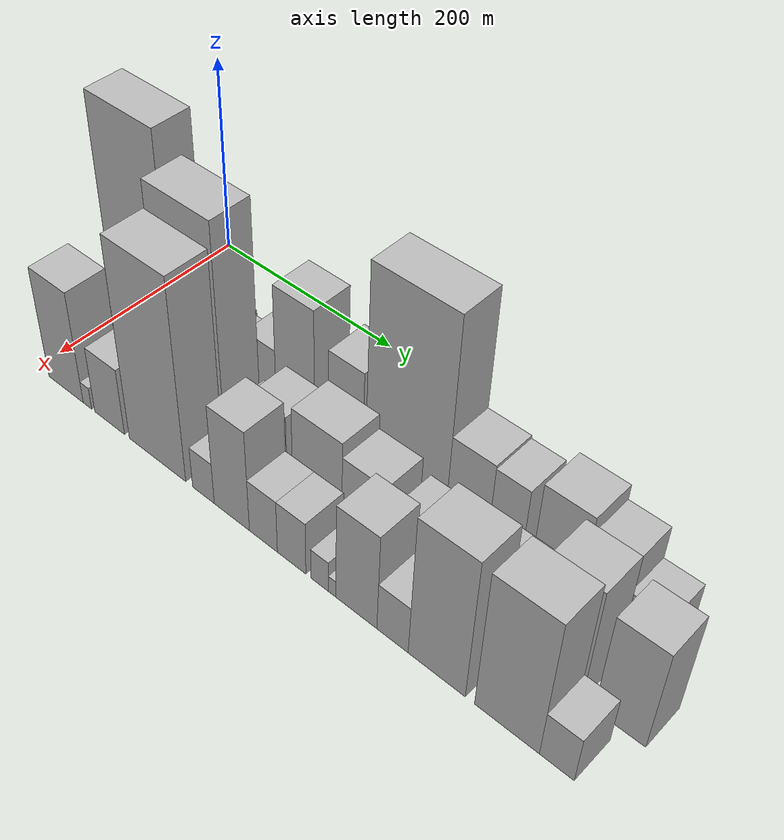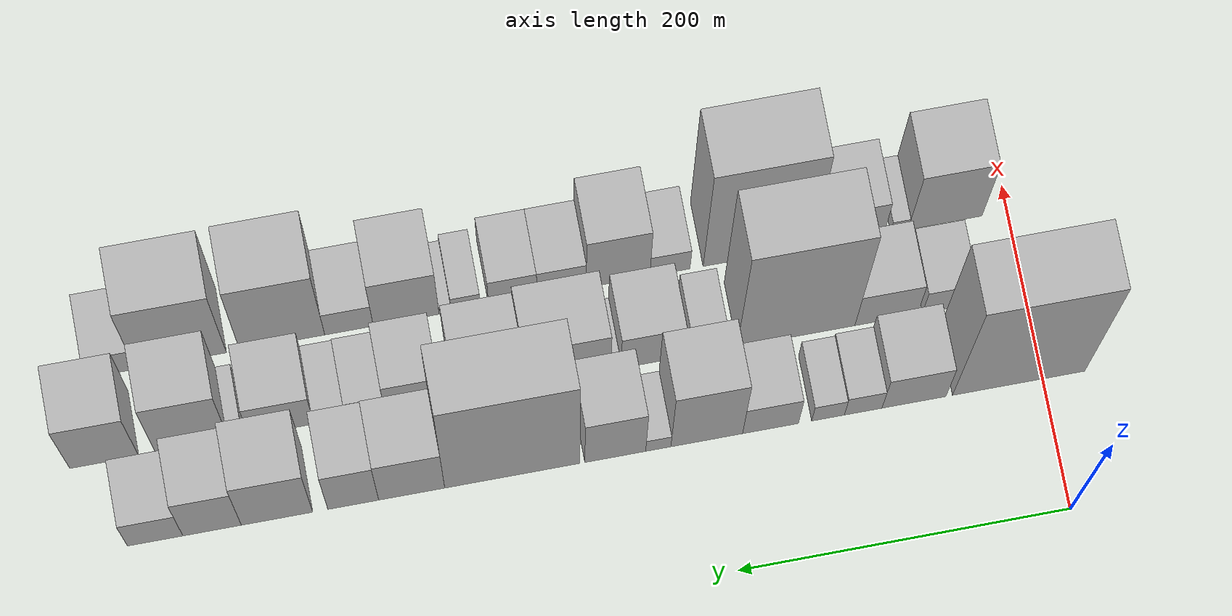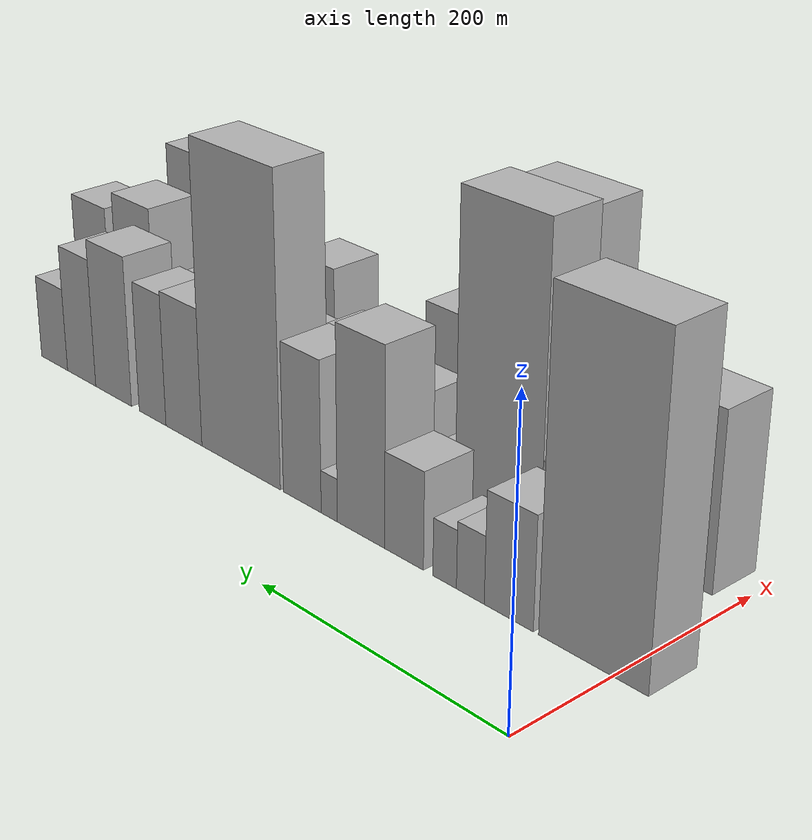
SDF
<sdf version="1.6">
 <world name="default">
  <model name="building_15">
   <static>1</static>
   <pose>100.0000 14.8957 0 0.000000 0.000000 0.000000</pose>
   <link name="link">
    <pose>0 0 108.00 0 0 0</pose>
    <collision name="collision"><geometry><box><size>40.0000 80.1104 216.0000</size></box></geometry></collision>
    <visual name="visual">
     <cast_shadows>0</cast_shadows>
     <geometry><box><size>40.0000 80.1104 216.0000</size></box></geometry>
     <material>
      <script>
       <uri>model://HANNAS_wall/materials/scripts</uri>
       <uri>model://HANNAS_wall/materials/textures</uri>
       <name>vrc/HANNAS_wall</name>
      </script>
     </material>
    </visual>
   </link>
  </model>
  <model name="building_16">
   <static>1</static>
   <pose>100.0000 78.2823 0 0.000000 0.000000 0.000000</pose>
   <link name="link">
    <pose>0 0 37.50 0 0 0</pose>
    <collision name="collision"><geometry><box><size>40.0000 38.6628 75.0000</size></box></geometry></collision>
    <visual name="visual">
     <cast_shadows>0</cast_shadows>
     <geometry><box><size>40.0000 38.6628 75.0000</size></box></geometry>
     <material>
      <script>
       <uri>model://HANNAS_wall/materials/scripts</uri>
       <uri>model://HANNAS_wall/materials/textures</uri>
       <name>vrc/HANNAS_wall</name>
      </script>
     </material>
    </visual>
   </link>
  </model>
  <model name="building_17">
   <static>1</static>
   <pose>100.0000 108.9480 0 0.000000 0.000000 0.000000</pose>
   <link name="link">
    <pose>0 0 22.50 0 0 0</pose>
    <collision name="collision"><geometry><box><size>40.0000 22.6685 45.0000</size></box></geometry></collision>
    <visual name="visual">
     <cast_shadows>0</cast_shadows>
     <geometry><box><size>40.0000 22.6685 45.0000</size></box></geometry>
     <material>
      <script>
       <uri>model://HANNAS_wall/materials/scripts</uri>
       <uri>model://HANNAS_wall/materials/textures</uri>
       <name>vrc/HANNAS_wall</name>
      </script>
     </material>
    </visual>
   </link>
  </model>
  <model name="building_18">
   <static>1</static>
   <pose>100.0000 130.1563 0 0.000000 0.000000 0.000000</pose>
   <link name="link">
    <pose>0 0 19.50 0 0 0</pose>
    <collision name="collision"><geometry><box><size>40.0000 19.7481 39.0000</size></box></geometry></collision>
    <visual name="visual">
     <cast_shadows>0</cast_shadows>
     <geometry><box><size>40.0000 19.7481 39.0000</size></box></geometry>
     <material>
      <script>
       <uri>model://HANNAS_wall/materials/scripts</uri>
       <uri>model://HANNAS_wall/materials/textures</uri>
       <name>vrc/HANNAS_wall</name>
      </script>
     </material>
    </visual>
   </link>
  </model>
  <model name="building_19">
   <static>1</static>
   <pose>100.0000 164.8471 0 0.000000 0.000000 0.000000</pose>
   <link name="link">
    <pose>0 0 33.00 0 0 0</pose>
    <collision name="collision"><geometry><box><size>40.0000 33.6333 66.0000</size></box></geometry></collision>
    <visual name="visual">
     <cast_shadows>0</cast_shadows>
     <geometry><box><size>40.0000 33.6333 66.0000</size></box></geometry>
     <material>
      <script>
       <uri>model://HANNAS_wall/materials/scripts</uri>
       <uri>model://HANNAS_wall/materials/textures</uri>
       <name>vrc/HANNAS_wall</name>
      </script>
     </material>
    </visual>
   </link>
  </model>
  <model name="building_20">
   <static>1</static>
   <pose>100.0000 203.2782 0 0.000000 0.000000 0.000000</pose>
   <link name="link">
    <pose>0 0 67.50 0 0 0</pose>
    <collision name="collision"><geometry><box><size>40.0000 43.2290 135.0000</size></box></geometry></collision>
    <visual name="visual">
     <cast_shadows>0</cast_shadows>
     <geometry><box><size>40.0000 43.2290 135.0000</size></box></geometry>
     <material>
      <script>
       <uri>model://HANNAS_wall/materials/scripts</uri>
       <uri>model://HANNAS_wall/materials/textures</uri>
       <name>vrc/HANNAS_wall</name>
      </script>
     </material>
    </visual>
   </link>
  </model>
  <model name="building_21">
   <static>1</static>
   <pose>100.0000 232.4542 0 0.000000 0.000000 0.000000</pose>
   <link name="link">
    <pose>0 0 15.00 0 0 0</pose>
    <collision name="collision"><geometry><box><size>40.0000 15.1230 30.0000</size></box></geometry></collision>
    <visual name="visual">
     <cast_shadows>0</cast_shadows>
     <geometry><box><size>40.0000 15.1230 30.0000</size></box></geometry>
     <material>
      <script>
       <uri>model://HANNAS_wall/materials/scripts</uri>
       <uri>model://HANNAS_wall/materials/textures</uri>
       <name>vrc/HANNAS_wall</name>
      </script>
     </material>
    </visual>
   </link>
  </model>
  <model name="building_22">
   <static>1</static>
   <pose>100.0000 258.2992 0 0.000000 0.000000 0.000000</pose>
   <link name="link">
    <pose>0 0 52.50 0 0 0</pose>
    <collision name="collision"><geometry><box><size>40.0000 36.5669 105.0000</size></box></geometry></collision>
    <visual name="visual">
     <cast_shadows>0</cast_shadows>
     <geometry><box><size>40.0000 36.5669 105.0000</size></box></geometry>
     <material>
      <script>
       <uri>model://HANNAS_wall/materials/scripts</uri>
       <uri>model://HANNAS_wall/materials/textures</uri>
       <name>vrc/HANNAS_wall</name>
      </script>
     </material>
    </visual>
   </link>
  </model>
  <model name="building_23">
   <static>1</static>
   <pose>100.0000 320.1064 0 0.000000 0.000000 0.000000</pose>
   <link name="link">
    <pose>0 0 108.00 0 0 0</pose>
    <collision name="collision"><geometry><box><size>40.0000 81.0476 216.0000</size></box></geometry></collision>
    <visual name="visual">
     <cast_shadows>0</cast_shadows>
     <geometry><box><size>40.0000 81.0476 216.0000</size></box></geometry>
     <material>
      <script>
       <uri>model://HANNAS_wall/materials/scripts</uri>
       <uri>model://HANNAS_wall/materials/textures</uri>
       <name>vrc/HANNAS_wall</name>
      </script>
     </material>
    </visual>
   </link>
  </model>
  <model name="building_24">
   <static>1</static>
   <pose>100.0000 380.3925 0 0.000000 0.000000 0.000000</pose>
   <link name="link">
    <pose>0 0 49.50 0 0 0</pose>
    <collision name="collision"><geometry><box><size>40.0000 39.5247 99.0000</size></box></geometry></collision>
    <visual name="visual">
     <cast_shadows>0</cast_shadows>
     <geometry><box><size>40.0000 39.5247 99.0000</size></box></geometry>
     <material>
      <script>
       <uri>model://HANNAS_wall/materials/scripts</uri>
       <uri>model://HANNAS_wall/materials/textures</uri>
       <name>vrc/HANNAS_wall</name>
      </script>
     </material>
    </visual>
   </link>
  </model>
  <model name="building_25">
   <static>1</static>
   <pose>100.0000 415.3816 0 0.000000 0.000000 0.000000</pose>
   <link name="link">
    <pose>0 0 48.00 0 0 0</pose>
    <collision name="collision"><geometry><box><size>40.0000 30.4535 96.0000</size></box></geometry></collision>
    <visual name="visual">
     <cast_shadows>0</cast_shadows>
     <geometry><box><size>40.0000 30.4535 96.0000</size></box></geometry>
     <material>
      <script>
       <uri>model://HANNAS_wall/materials/scripts</uri>
       <uri>model://HANNAS_wall/materials/textures</uri>
       <name>vrc/HANNAS_wall</name>
      </script>
     </material>
    </visual>
   </link>
  </model>
  <model name="building_26">
   <static>1</static>
   <pose>100.0000 460.9299 0 0.000000 0.000000 0.000000</pose>
   <link name="link">
    <pose>0 0 55.50 0 0 0</pose>
    <collision name="collision"><geometry><box><size>40.0000 42.6431 111.0000</size></box></geometry></collision>
    <visual name="visual">
     <cast_shadows>0</cast_shadows>
     <geometry><box><size>40.0000 42.6431 111.0000</size></box></geometry>
     <material>
      <script>
       <uri>model://HANNAS_wall/materials/scripts</uri>
       <uri>model://HANNAS_wall/materials/textures</uri>
       <name>vrc/HANNAS_wall</name>
      </script>
     </material>
    </visual>
   </link>
  </model>
  <model name="building_27">
   <static>1</static>
   <pose>100.0000 499.7047 0 0.000000 0.000000 0.000000</pose>
   <link name="link">
    <pose>0 0 48.00 0 0 0</pose>
    <collision name="collision"><geometry><box><size>40.0000 34.9063 96.0000</size></box></geometry></collision>
    <visual name="visual">
     <cast_shadows>0</cast_shadows>
     <geometry><box><size>40.0000 34.9063 96.0000</size></box></geometry>
     <material>
      <script>
       <uri>model://HANNAS_wall/materials/scripts</uri>
       <uri>model://HANNAS_wall/materials/textures</uri>
       <name>vrc/HANNAS_wall</name>
      </script>
     </material>
    </visual>
   </link>
  </model>
  <model name="building_28">
   <static>1</static>
   <pose>100.0000 533.6708 0 0.000000 0.000000 0.000000</pose>
   <link name="link">
    <pose>0 0 31.50 0 0 0</pose>
    <collision name="collision"><geometry><box><size>40.0000 33.0259 63.0000</size></box></geometry></collision>
    <visual name="visual">
     <cast_shadows>0</cast_shadows>
     <geometry><box><size>40.0000 33.0259 63.0000</size></box></geometry>
     <material>
      <script>
       <uri>model://HANNAS_wall/materials/scripts</uri>
       <uri>model://HANNAS_wall/materials/textures</uri>
       <name>vrc/HANNAS_wall</name>
      </script>
     </material>
    </visual>
   </link>
  </model>
  <model name="building_41">
   <static>1</static>
   <pose>152.0000 47.9209 0 0.000000 0.000000 0.000000</pose>
   <link name="link">
    <pose>0 0 25.50 0 0 0</pose>
    <collision name="collision"><geometry><box><size>40.0000 29.5241 51.0000</size></box></geometry></collision>
    <visual name="visual">
     <cast_shadows>0</cast_shadows>
     <geometry><box><size>40.0000 29.5241 51.0000</size></box></geometry>
     <material>
      <script>
       <uri>model://HANNAS_wall/materials/scripts</uri>
       <uri>model://HANNAS_wall/materials/textures</uri>
       <name>vrc/HANNAS_wall</name>
      </script>
     </material>
    </visual>
   </link>
  </model>
  <model name="building_42">
   <static>1</static>
   <pose>152.0000 84.6121 0 0.000000 0.000000 0.000000</pose>
   <link name="link">
    <pose>0 0 36.00 0 0 0</pose>
    <collision name="collision"><geometry><box><size>40.0000 37.8582 72.0000</size></box></geometry></collision>
    <visual name="visual">
     <cast_shadows>0</cast_shadows>
     <geometry><box><size>40.0000 37.8582 72.0000</size></box></geometry>
     <material>
      <script>
       <uri>model://HANNAS_wall/materials/scripts</uri>
       <uri>model://HANNAS_wall/materials/textures</uri>
       <name>vrc/HANNAS_wall</name>
      </script>
     </material>
    </visual>
   </link>
  </model>
  <model name="building_43">
   <static>1</static>
   <pose>152.0000 139.2581 0 0.000000 0.000000 0.000000</pose>
   <link name="link">
    <pose>0 0 111.00 0 0 0</pose>
    <collision name="collision"><geometry><box><size>40.0000 71.4339 222.0000</size></box></geometry></collision>
    <visual name="visual">
     <cast_shadows>0</cast_shadows>
     <geometry><box><size>40.0000 71.4339 222.0000</size></box></geometry>
     <material>
      <script>
       <uri>model://HANNAS_wall/materials/scripts</uri>
       <uri>model://HANNAS_wall/materials/textures</uri>
       <name>vrc/HANNAS_wall</name>
      </script>
     </material>
    </visual>
   </link>
  </model>
  <model name="building_44">
   <static>1</static>
   <pose>152.0000 191.8766 0 0.000000 0.000000 0.000000</pose>
   <link name="link">
    <pose>0 0 21.00 0 0 0</pose>
    <collision name="collision"><geometry><box><size>40.0000 21.8030 42.0000</size></box></geometry></collision>
    <visual name="visual">
     <cast_shadows>0</cast_shadows>
     <geometry><box><size>40.0000 21.8030 42.0000</size></box></geometry>
     <material>
      <script>
       <uri>model://HANNAS_wall/materials/scripts</uri>
       <uri>model://HANNAS_wall/materials/textures</uri>
       <name>vrc/HANNAS_wall</name>
      </script>
     </material>
    </visual>
   </link>
  </model>
  <model name="building_45">
   <static>1</static>
   <pose>152.0000 225.9655 0 0.000000 0.000000 0.000000</pose>
   <link name="link">
    <pose>0 0 37.50 0 0 0</pose>
    <collision name="collision"><geometry><box><size>40.0000 38.3748 75.0000</size></box></geometry></collision>
    <visual name="visual">
     <cast_shadows>0</cast_shadows>
     <geometry><box><size>40.0000 38.3748 75.0000</size></box></geometry>
     <material>
      <script>
       <uri>model://HANNAS_wall/materials/scripts</uri>
       <uri>model://HANNAS_wall/materials/textures</uri>
       <name>vrc/HANNAS_wall</name>
      </script>
     </material>
    </visual>
   </link>
  </model>
  <model name="building_46">
   <static>1</static>
   <pose>152.0000 248.2238 0 0.000000 0.000000 0.000000</pose>
   <link name="link">
    <pose>0 0 7.50 0 0 0</pose>
    <collision name="collision"><geometry><box><size>40.0000 6.1420 15.0000</size></box></geometry></collision>
    <visual name="visual">
     <cast_shadows>0</cast_shadows>
     <geometry><box><size>40.0000 6.1420 15.0000</size></box></geometry>
     <material>
      <script>
       <uri>model://HANNAS_wall/materials/scripts</uri>
       <uri>model://HANNAS_wall/materials/textures</uri>
       <name>vrc/HANNAS_wall</name>
      </script>
     </material>
    </visual>
   </link>
  </model>
  <model name="building_47">
   <static>1</static>
   <pose>152.0000 277.0766 0 0.000000 0.000000 0.000000</pose>
   <link name="link">
    <pose>0 0 45.00 0 0 0</pose>
    <collision name="collision"><geometry><box><size>40.0000 51.5635 90.0000</size></box></geometry></collision>
    <visual name="visual">
     <cast_shadows>0</cast_shadows>
     <geometry><box><size>40.0000 51.5635 90.0000</size></box></geometry>
     <material>
      <script>
       <uri>model://HANNAS_wall/materials/scripts</uri>
       <uri>model://HANNAS_wall/materials/textures</uri>
       <name>vrc/HANNAS_wall</name>
      </script>
     </material>
    </visual>
   </link>
  </model>
  <model name="building_48">
   <static>1</static>
   <pose>152.0000 324.0281 0 0.000000 0.000000 0.000000</pose>
   <link name="link">
    <pose>0 0 37.50 0 0 0</pose>
    <collision name="collision"><geometry><box><size>40.0000 42.3395 75.0000</size></box></geometry></collision>
    <visual name="visual">
     <cast_shadows>0</cast_shadows>
     <geometry><box><size>40.0000 42.3395 75.0000</size></box></geometry>
     <material>
      <script>
       <uri>model://HANNAS_wall/materials/scripts</uri>
       <uri>model://HANNAS_wall/materials/textures</uri>
       <name>vrc/HANNAS_wall</name>
      </script>
     </material>
    </visual>
   </link>
  </model>
  <model name="building_49">
   <static>1</static>
   <pose>152.0000 370.3041 0 0.000000 0.000000 0.000000</pose>
   <link name="link">
    <pose>0 0 31.50 0 0 0</pose>
    <collision name="collision"><geometry><box><size>40.0000 34.2124 63.0000</size></box></geometry></collision>
    <visual name="visual">
     <cast_shadows>0</cast_shadows>
     <geometry><box><size>40.0000 34.2124 63.0000</size></box></geometry>
     <material>
      <script>
       <uri>model://HANNAS_wall/materials/scripts</uri>
       <uri>model://HANNAS_wall/materials/textures</uri>
       <name>vrc/HANNAS_wall</name>
      </script>
     </material>
    </visual>
   </link>
  </model>
  <model name="building_50">
   <static>1</static>
   <pose>152.0000 399.0556 0 0.000000 0.000000 0.000000</pose>
   <link name="link">
    <pose>0 0 19.50 0 0 0</pose>
    <collision name="collision"><geometry><box><size>40.0000 23.2908 39.0000</size></box></geometry></collision>
    <visual name="visual">
     <cast_shadows>0</cast_shadows>
     <geometry><box><size>40.0000 23.2908 39.0000</size></box></geometry>
     <material>
      <script>
       <uri>model://HANNAS_wall/materials/scripts</uri>
       <uri>model://HANNAS_wall/materials/textures</uri>
       <name>vrc/HANNAS_wall</name>
      </script>
     </material>
    </visual>
   </link>
  </model>
  <model name="building_51">
   <static>1</static>
   <pose>152.0000 420.2294 0 0.000000 0.000000 0.000000</pose>
   <link name="link">
    <pose>0 0 18.00 0 0 0</pose>
    <collision name="collision"><geometry><box><size>40.0000 19.0568 36.0000</size></box></geometry></collision>
    <visual name="visual">
     <cast_shadows>0</cast_shadows>
     <geometry><box><size>40.0000 19.0568 36.0000</size></box></geometry>
     <material>
      <script>
       <uri>model://HANNAS_wall/materials/scripts</uri>
       <uri>model://HANNAS_wall/materials/textures</uri>
       <name>vrc/HANNAS_wall</name>
      </script>
     </material>
    </visual>
   </link>
  </model>
  <model name="building_52">
   <static>1</static>
   <pose>152.0000 449.4010 0 0.000000 0.000000 0.000000</pose>
   <link name="link">
    <pose>0 0 36.00 0 0 0</pose>
    <collision name="collision"><geometry><box><size>40.0000 39.2864 72.0000</size></box></geometry></collision>
    <visual name="visual">
     <cast_shadows>0</cast_shadows>
     <geometry><box><size>40.0000 39.2864 72.0000</size></box></geometry>
     <material>
      <script>
       <uri>model://HANNAS_wall/materials/scripts</uri>
       <uri>model://HANNAS_wall/materials/textures</uri>
       <name>vrc/HANNAS_wall</name>
      </script>
     </material>
    </visual>
   </link>
  </model>
  <model name="building_53">
   <static>1</static>
   <pose>152.0000 476.5127 0 0.000000 0.000000 0.000000</pose>
   <link name="link">
    <pose>0 0 10.50 0 0 0</pose>
    <collision name="collision"><geometry><box><size>40.0000 8.9369 21.0000</size></box></geometry></collision>
    <visual name="visual">
     <cast_shadows>0</cast_shadows>
     <geometry><box><size>40.0000 8.9369 21.0000</size></box></geometry>
     <material>
      <script>
       <uri>model://HANNAS_wall/materials/scripts</uri>
       <uri>model://HANNAS_wall/materials/textures</uri>
       <name>vrc/HANNAS_wall</name>
      </script>
     </material>
    </visual>
   </link>
  </model>
  <model name="building_54">
   <static>1</static>
   <pose>152.0000 502.9391 0 0.000000 0.000000 0.000000</pose>
   <link name="link">
    <pose>0 0 60.00 0 0 0</pose>
    <collision name="collision"><geometry><box><size>40.0000 43.9160 120.0000</size></box></geometry></collision>
    <visual name="visual">
     <cast_shadows>0</cast_shadows>
     <geometry><box><size>40.0000 43.9160 120.0000</size></box></geometry>
     <material>
      <script>
       <uri>model://HANNAS_wall/materials/scripts</uri>
       <uri>model://HANNAS_wall/materials/textures</uri>
       <name>vrc/HANNAS_wall</name>
      </script>
     </material>
    </visual>
   </link>
  </model>
  <model name="building_55">
   <static>1</static>
   <pose>152.0000 555.5497 0 0.000000 0.000000 0.000000</pose>
   <link name="link">
    <pose>0 0 52.50 0 0 0</pose>
    <collision name="collision"><geometry><box><size>40.0000 41.3052 105.0000</size></box></geometry></collision>
    <visual name="visual">
     <cast_shadows>0</cast_shadows>
     <geometry><box><size>40.0000 41.3052 105.0000</size></box></geometry>
     <material>
      <script>
       <uri>model://HANNAS_wall/materials/scripts</uri>
       <uri>model://HANNAS_wall/materials/textures</uri>
       <name>vrc/HANNAS_wall</name>
      </script>
     </material>
    </visual>
   </link>
  </model>
  <model name="building_73">
   <static>1</static>
   <pose>204.0000 38.1514 0 0.000000 0.000000 0.000000</pose>
   <link name="link">
    <pose>0 0 60.00 0 0 0</pose>
    <collision name="collision"><geometry><box><size>40.0000 45.0077 120.0000</size></box></geometry></collision>
    <visual name="visual">
     <cast_shadows>0</cast_shadows>
     <geometry><box><size>40.0000 45.0077 120.0000</size></box></geometry>
     <material>
      <script>
       <uri>model://HANNAS_wall/materials/scripts</uri>
       <uri>model://HANNAS_wall/materials/textures</uri>
       <name>vrc/HANNAS_wall</name>
      </script>
     </material>
    </visual>
   </link>
  </model>
  <model name="building_74">
   <static>1</static>
   <pose>204.0000 66.0488 0 0.000000 0.000000 0.000000</pose>
   <link name="link">
    <pose>0 0 12.00 0 0 0</pose>
    <collision name="collision"><geometry><box><size>40.0000 10.7871 24.0000</size></box></geometry></collision>
    <visual name="visual">
     <cast_shadows>0</cast_shadows>
     <geometry><box><size>40.0000 10.7871 24.0000</size></box></geometry>
     <material>
      <script>
       <uri>model://HANNAS_wall/materials/scripts</uri>
       <uri>model://HANNAS_wall/materials/textures</uri>
       <name>vrc/HANNAS_wall</name>
      </script>
     </material>
    </visual>
   </link>
  </model>
  <model name="building_75">
   <static>1</static>
   <pose>204.0000 93.9990 0 0.000000 0.000000 0.000000</pose>
   <link name="link">
    <pose>0 0 36.00 0 0 0</pose>
    <collision name="collision"><geometry><box><size>40.0000 37.1134 72.0000</size></box></geometry></collision>
    <visual name="visual">
     <cast_shadows>0</cast_shadows>
     <geometry><box><size>40.0000 37.1134 72.0000</size></box></geometry>
     <material>
      <script>
       <uri>model://HANNAS_wall/materials/scripts</uri>
       <uri>model://HANNAS_wall/materials/textures</uri>
       <name>vrc/HANNAS_wall</name>
      </script>
     </material>
    </visual>
   </link>
  </model>
  <model name="building_76">
   <static>1</static>
   <pose>204.0000 151.9984 0 0.000000 0.000000 0.000000</pose>
   <link name="link">
    <pose>0 0 105.00 0 0 0</pose>
    <collision name="collision"><geometry><box><size>40.0000 66.8854 210.0000</size></box></geometry></collision>
    <visual name="visual">
     <cast_shadows>0</cast_shadows>
     <geometry><box><size>40.0000 66.8854 210.0000</size></box></geometry>
     <material>
      <script>
       <uri>model://HANNAS_wall/materials/scripts</uri>
       <uri>model://HANNAS_wall/materials/textures</uri>
       <name>vrc/HANNAS_wall</name>
      </script>
     </material>
    </visual>
   </link>
  </model>
  <model name="building_77">
   <static>1</static>
   <pose>204.0000 205.6236 0 0.000000 0.000000 0.000000</pose>
   <link name="link">
    <pose>0 0 22.50 0 0 0</pose>
    <collision name="collision"><geometry><box><size>40.0000 24.3649 45.0000</size></box></geometry></collision>
    <visual name="visual">
     <cast_shadows>0</cast_shadows>
     <geometry><box><size>40.0000 24.3649 45.0000</size></box></geometry>
     <material>
      <script>
       <uri>model://HANNAS_wall/materials/scripts</uri>
       <uri>model://HANNAS_wall/materials/textures</uri>
       <name>vrc/HANNAS_wall</name>
      </script>
     </material>
    </visual>
   </link>
  </model>
  <model name="building_78">
   <static>1</static>
   <pose>204.0000 237.0887 0 0.000000 0.000000 0.000000</pose>
   <link name="link">
    <pose>0 0 54.00 0 0 0</pose>
    <collision name="collision"><geometry><box><size>40.0000 38.5654 108.0000</size></box></geometry></collision>
    <visual name="visual">
     <cast_shadows>0</cast_shadows>
     <geometry><box><size>40.0000 38.5654 108.0000</size></box></geometry>
     <material>
      <script>
       <uri>model://HANNAS_wall/materials/scripts</uri>
       <uri>model://HANNAS_wall/materials/textures</uri>
       <name>vrc/HANNAS_wall</name>
      </script>
     </material>
    </visual>
   </link>
  </model>
  <model name="building_79">
   <static>1</static>
   <pose>204.0000 271.2367 0 0.000000 0.000000 0.000000</pose>
   <link name="link">
    <pose>0 0 28.50 0 0 0</pose>
    <collision name="collision"><geometry><box><size>40.0000 29.7305 57.0000</size></box></geometry></collision>
    <visual name="visual">
     <cast_shadows>0</cast_shadows>
     <geometry><box><size>40.0000 29.7305 57.0000</size></box></geometry>
     <material>
      <script>
       <uri>model://HANNAS_wall/materials/scripts</uri>
       <uri>model://HANNAS_wall/materials/textures</uri>
       <name>vrc/HANNAS_wall</name>
      </script>
     </material>
    </visual>
   </link>
  </model>
  <model name="building_80">
   <static>1</static>
   <pose>204.0000 300.7690 0 0.000000 0.000000 0.000000</pose>
   <link name="link">
    <pose>0 0 28.50 0 0 0</pose>
    <collision name="collision"><geometry><box><size>40.0000 29.3341 57.0000</size></box></geometry></collision>
    <visual name="visual">
     <cast_shadows>0</cast_shadows>
     <geometry><box><size>40.0000 29.3341 57.0000</size></box></geometry>
     <material>
      <script>
       <uri>model://HANNAS_wall/materials/scripts</uri>
       <uri>model://HANNAS_wall/materials/textures</uri>
       <name>vrc/HANNAS_wall</name>
      </script>
     </material>
    </visual>
   </link>
  </model>
  <model name="building_81">
   <static>1</static>
   <pose>204.0000 329.2446 0 0.000000 0.000000 0.000000</pose>
   <link name="link">
    <pose>0 0 16.50 0 0 0</pose>
    <collision name="collision"><geometry><box><size>40.0000 17.6173 33.0000</size></box></geometry></collision>
    <visual name="visual">
     <cast_shadows>0</cast_shadows>
     <geometry><box><size>40.0000 17.6173 33.0000</size></box></geometry>
     <material>
      <script>
       <uri>model://HANNAS_wall/materials/scripts</uri>
       <uri>model://HANNAS_wall/materials/textures</uri>
       <name>vrc/HANNAS_wall</name>
      </script>
     </material>
    </visual>
   </link>
  </model>
  <model name="building_82">
   <static>1</static>
   <pose>204.0000 341.7054 0 0.000000 0.000000 0.000000</pose>
   <link name="link">
    <pose>0 0 9.00 0 0 0</pose>
    <collision name="collision"><geometry><box><size>40.0000 7.3042 18.0000</size></box></geometry></collision>
    <visual name="visual">
     <cast_shadows>0</cast_shadows>
     <geometry><box><size>40.0000 7.3042 18.0000</size></box></geometry>
     <material>
      <script>
       <uri>model://HANNAS_wall/materials/scripts</uri>
       <uri>model://HANNAS_wall/materials/textures</uri>
       <name>vrc/HANNAS_wall</name>
      </script>
     </material>
    </visual>
   </link>
  </model>
  <model name="building_83">
   <static>1</static>
   <pose>204.0000 365.2390 0 0.000000 0.000000 0.000000</pose>
   <link name="link">
    <pose>0 0 51.00 0 0 0</pose>
    <collision name="collision"><geometry><box><size>40.0000 39.7630 102.0000</size></box></geometry></collision>
    <visual name="visual">
     <cast_shadows>0</cast_shadows>
     <geometry><box><size>40.0000 39.7630 102.0000</size></box></geometry>
     <material>
      <script>
       <uri>model://HANNAS_wall/materials/scripts</uri>
       <uri>model://HANNAS_wall/materials/textures</uri>
       <name>vrc/HANNAS_wall</name>
      </script>
     </material>
    </visual>
   </link>
  </model>
  <model name="building_84">
   <static>1</static>
   <pose>204.0000 399.7669 0 0.000000 0.000000 0.000000</pose>
   <link name="link">
    <pose>0 0 25.50 0 0 0</pose>
    <collision name="collision"><geometry><box><size>40.0000 29.2927 51.0000</size></box></geometry></collision>
    <visual name="visual">
     <cast_shadows>0</cast_shadows>
     <geometry><box><size>40.0000 29.2927 51.0000</size></box></geometry>
     <material>
      <script>
       <uri>model://HANNAS_wall/materials/scripts</uri>
       <uri>model://HANNAS_wall/materials/textures</uri>
       <name>vrc/HANNAS_wall</name>
      </script>
     </material>
    </visual>
   </link>
  </model>
  <model name="building_85">
   <static>1</static>
   <pose>204.0000 440.0350 0 0.000000 0.000000 0.000000</pose>
   <link name="link">
    <pose>0 0 73.50 0 0 0</pose>
    <collision name="collision"><geometry><box><size>40.0000 51.2434 147.0000</size></box></geometry></collision>
    <visual name="visual">
     <cast_shadows>0</cast_shadows>
     <geometry><box><size>40.0000 51.2434 147.0000</size></box></geometry>
     <material>
      <script>
       <uri>model://HANNAS_wall/materials/scripts</uri>
       <uri>model://HANNAS_wall/materials/textures</uri>
       <name>vrc/HANNAS_wall</name>
      </script>
     </material>
    </visual>
   </link>
  </model>
  <model name="building_86">
   <static>1</static>
   <pose>204.0000 500.9403 0 0.000000 0.000000 0.000000</pose>
   <link name="link">
    <pose>0 0 72.00 0 0 0</pose>
    <collision name="collision"><geometry><box><size>40.0000 54.5672 144.0000</size></box></geometry></collision>
    <visual name="visual">
     <cast_shadows>0</cast_shadows>
     <geometry><box><size>40.0000 54.5672 144.0000</size></box></geometry>
     <material>
      <script>
       <uri>model://HANNAS_wall/materials/scripts</uri>
       <uri>model://HANNAS_wall/materials/textures</uri>
       <name>vrc/HANNAS_wall</name>
      </script>
     </material>
    </visual>
   </link>
  </model>
  <model name="building_87">
   <static>1</static>
   <pose>204.0000 542.2314 0 0.000000 0.000000 0.000000</pose>
   <link name="link">
    <pose>0 0 24.00 0 0 0</pose>
    <collision name="collision"><geometry><box><size>40.0000 28.0149 48.0000</size></box></geometry></collision>
    <visual name="visual">
     <cast_shadows>0</cast_shadows>
     <geometry><box><size>40.0000 28.0149 48.0000</size></box></geometry>
     <material>
      <script>
       <uri>model://HANNAS_wall/materials/scripts</uri>
       <uri>model://HANNAS_wall/materials/textures</uri>
       <name>vrc/HANNAS_wall</name>
      </script>
     </material>
    </visual>
   </link>
  </model>
 </world>
</sdf>
